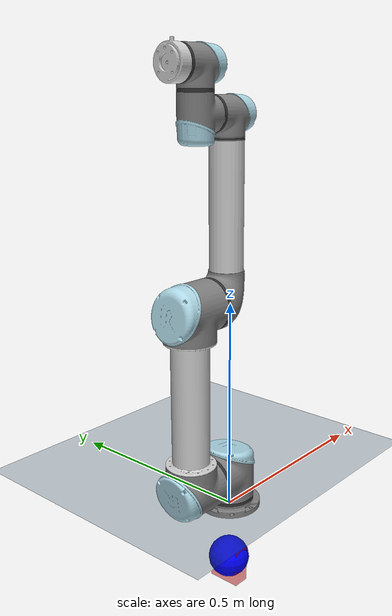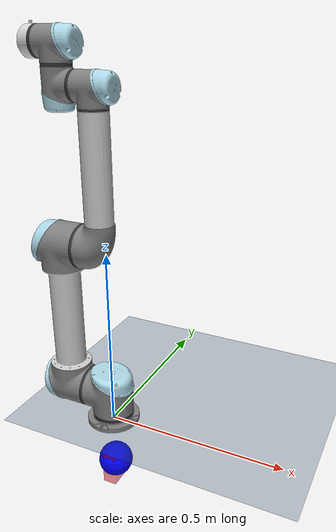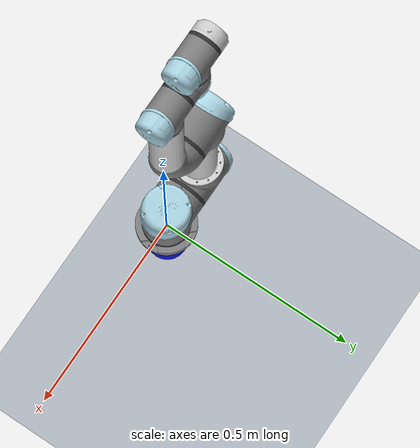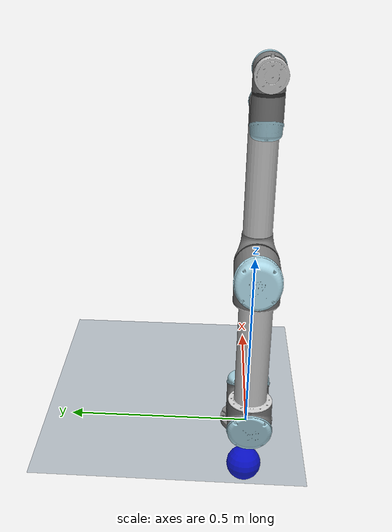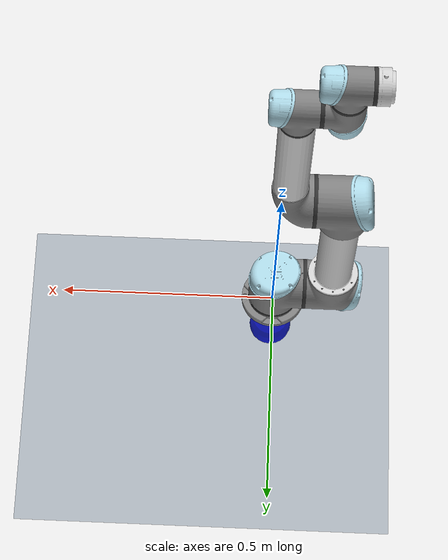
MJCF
<!-- NOTE: the joint limits and references have not been set. If using -->
<!-- this to control a real ur5, make sure they align with the values -->
<!-- used in the real arm firmware -->
<!-- Masses and center-of-masses taken from: www.universal-robots.com/
        how-tos-and-faqs/faq/ur-faq/
        parameters-for-calculations-of-kinematics-and-dynamics-45257/ -->
<!-- Principle moments of inertia not provided, set all to 0.1. -->
<!-- Inertia parameters provided at link below, not sure of accuracy so not used:
        http://hades.mech.northwestern.edu/images/4/49/UR5-URDF.pdf -->
<mujoco model="ur5">
    <compiler angle="radian" meshdir="meshes" balanceinertia="true"/>
  <option integrator="implicit" impratio="10" gravity = "0 0 -9.81" timestep="0.001" collision="dynamic"
  cone="pyramidal" noslip_iterations="3"/>
    <default>
        <light castshadow="false" diffuse="1 1 1" />
        <camera fovy="60" />
        <default class="2f85">
          <mesh scale="0.001 0.001 0.001"/>
          <general biastype="affine"/>
          <joint axis="1 0 0"/>
          <default class="driver">
            <joint range="0 0.8" armature="0.005" damping="0.1" solimplimit="0.95 0.99 0.001" solreflimit="0.005 1"/>
          </default>
          <default class="follower">
            <joint range="-0.872664 0.872664" pos="0 -0.018 0.0065" solimplimit="0.95 0.99 0.001" solreflimit="0.005 1"/>
          </default>
          <default class="spring_link">
            <joint range="-0.29670597283 0.8" stiffness="0.05" springref="2.62" damping="0.00125"/>
          </default>
          <default class="coupler">
            <joint range="-1.57 0" solimplimit="0.95 0.99 0.001" solreflimit="0.005 1"/>
          </default>

          <default class="visual1">
            <geom type="mesh" contype="0" conaffinity="0" group="2"/>
          </default>
          <default class="collision1">
            <geom type="mesh" group="3"/>
            <default class="pad_box1">
              <geom mass="0" type="box" pos="0 -0.0026 0.028125" size="0.011 0.004 0.009375" friction="0.7"
                solimp="0.95 0.99 0.001" solref="0.004 1" priority="1" rgba="0.55 0.55 0.55 1"/>
            </default>
            <default class="pad_box2">
              <geom mass="0" type="box" pos="0 -0.0026 0.009375" size="0.011 0.004 0.009375" friction="0.7"
                solimp="0.95 0.99 0.001" solref="0.004 1" priority="1" rgba="0.45 0.45 0.45 1"/>
            </default>
          </default>
        </default>
    </default>

    <custom>
        <numeric name="START_ANGLES" data="0 0 1.57 0 1.57 0"/>
        <numeric name="N_GRIPPER_JOINTS" data="2" />
        <text name="google_id" data="1SjWRUl-D1FZ5fB2cy4jF4X9wTsQ5LWzo"/>
    </custom>

    <asset>
        <!-- arm models -->
        <mesh file="link0.stl"/>
        <mesh file="link1.stl"/>
        <mesh file="link1_cap.stl" />
        <mesh file="link1_connector.stl" />
        <mesh file="link2.stl" />
        <mesh file="link2_tube.stl" />
        <mesh file="link2_cap.stl" />
        <mesh file="link2_connector.stl" />
        <mesh file="link3a.stl" />
        <mesh file="link3a_connector.stl" />
        <mesh file="link3_tube.stl" />
        <mesh file="link3_cap.stl" />
        <mesh file="link3b.stl" />
        <mesh file="link3b_connector.stl" />
        <mesh file="link3b_connector2.stl"/>
        <mesh file="link4.stl" />
        <mesh file="link4_cap.stl" />
        <mesh file="link4_connector.stl" />
        <mesh file="link5.stl" />
        <mesh file="link5_cap.stl" />
        <mesh file="link5_connector.stl" />
        <mesh file="link6.stl" />
        <mesh file="link6_connector.stl" />

        <mesh class="2f85" file="base_mount.stl"/>
        <mesh class="2f85" file="base.stl"/>
        <mesh class="2f85" file="driver.stl"/>
        <mesh class="2f85" file="coupler.stl"/>
        <mesh class="2f85" file="follower.stl"/>
        <mesh class="2f85" file="pad.stl"/>
        <mesh class="2f85" file="silicone_pad.stl"/>
        <mesh class="2f85" file="spring_link.stl"/>

        <texture type="skybox" builtin="gradient" rgb1="0.3 0.5 0.7" rgb2="0 0 0" width="512" height="3072"/>
        <texture type="2d" name="groundplane" builtin="checker" mark="edge" rgb1="0.2 0.3 0.4" rgb2="0.1 0.2 0.3"
      markrgb="0.8 0.8 0.8" width="300" height="300"/>
        <material name="groundplane" texture="groundplane" texuniform="true" texrepeat="5 5" reflectance="0.2"/>
        <material name="silver" specular="1" shininess="0.5" reflectance="1" emission="0.25" rgba="0.82 0.82 0.82 1"/>
        <material name="grey" specular="1" shininess="0.5" reflectance="1" emission="0.1" rgba="0.5 0.5 0.5 1"/>
        <material name="blue" specular="1" shininess="0.5" reflectance="1" emission="0" rgba="0.678 0.847 0.902 1"/>
        <material name="black" specular="1" shininess="0.5" reflectance="1" emission="0" rgba="0.2 0.2 0.2 1"/>
        <material name="metal" rgba="0.58 0.58 0.58 1"/>
        <material name="silicone" rgba="0.1882 0.1882 0.1882 1"/>
        <material name="gray" rgba="0.4627 0.4627 0.4627 1"/>
        <material name="black1" rgba="0.149 0.149 0.149 1"/>

    </asset>

    <worldbody>

        <body name="hand" pos="0 0 -0.15" mocap="true">
            <geom type="box" size=".002 .004 .006" rgba="0 .9 0 .5" contype="2" conaffinity="2"/>
        </body>

        <body name="target" pos="0 0 -0.15" mocap="true">
            <geom name="target" type="sphere" size="0.01" rgba=".9 0 0 .5" contype="4" conaffinity="4"/>
        </body>

        <body name="target_orientation" pos="0 0 -0.15" mocap="true">
            <geom type="box" size=".02 .04 .06" rgba=".9 0 0 .5" contype="8" conaffinity="8"/>
        </body>

        <body name="path_planner" pos="0 0 -0.15" mocap="true">
            <geom type="sphere" size="0.05" rgba="0 1 1 0.5" contype="16" conaffinity="16"/>
        </body>

        <body name="path_planner_orientation" pos="0 0 -0.15" mocap="true">
            <geom type="box" size=".02 .04 .06" rgba="0 1 1 .5" contype="16" conaffinity="16"/>
        </body>

        <body name="obstacle" pos="0 0 -0.15" mocap="true">
            <geom type="sphere" size="0.05" rgba="0 0 1 1"/>
        </body>

        <light directional="true" pos="0 0 15" dir="0 0 -1" />
        <geom name="floor" size="0 0 0.05" type="plane" material="groundplane"/>
        <body name="base_link" pos="0 0 0">
            <geom name="link0" type="mesh" mesh="link0" pos="0 0 0"/>

            <body name="link1" pos="0 0 0.0213">
                <joint name="joint0" axis="0 0 1" pos="0 0 0"/>
                <inertial pos="0 -0.02561 0.00193" mass="3.761" diaginertia="0.1 0.1 0.1"/>
                <geom name="link1_connector" type="mesh" mesh="link1_connector" pos="0 0 0" material="black"
                    conaffinity="32" contype="32"/>
                <geom name="link1" type="mesh" mesh="link1" pos="0 0 0.008" material="grey"/>
                <geom name="link1_cap" type="mesh" mesh="link1_cap" pos="0 0 .1025" material="blue"/>

                <body name="link2" pos="-0.0663 0 0.0679">
                    <joint name="joint1" axis="-1 0 0" pos="0 0 0"/>
                    <inertial pos="-0.04706 0 0.2125" mass="8.058" diaginertia="0.1 0.1 0.1"/>
                    <geom name="link2_connector" type="mesh" mesh="link2_connector" pos="0 0 0" material="black"
                        conaffinity="32" contype="32"/>
                    <geom name="link2" type="mesh" mesh="link2" pos="-0.008 0 0" material="grey"/>
                    <geom name="link2_cap" type="mesh" mesh="link2_cap" pos="-0.1015 0 -0.0025" material="blue"/>
                    <geom name="link2_tube" type="mesh" mesh="link2_tube" pos="-0.0679 0 0.066" material="silver"/>

                    <body name="link3" pos="-0.008 0 0.425">
                        <joint name="joint2" axis="1 0 0" pos="0 0 0"/>
                        <inertial pos="0.0478 0 0.15" mass="2.846" diaginertia="0.1 0.1 0.1"/>
                        <geom name="link3a_connector" type="mesh" mesh="link3a_connector" pos="0 0 0" material="black"
                            conaffinity="32" contype="32"/>
                        <geom name="link3a" type="mesh" mesh="link3a" pos="0.008 0 0" material="grey"/>
                        <geom name="link3_tube" type="mesh" mesh="link3_tube" pos="0.059 0 0.066" material="silver"/>
                        <geom name="link3b_connector" type="mesh" mesh="link3b_connector" pos="0.059 0 0.3418" material="black" />
                        <geom name="link3b_connector2" type="mesh" mesh="link3b_connector2" pos="0.059 0 0.34" material="grey"
                            conaffinity="32" contype="32"/>
                        <geom name="link3b" type="mesh" mesh="link3b" pos="0.059 0 0.347" material="grey"/>
                        <geom name="link3_cap" type="mesh" mesh="link3_cap" pos="0.0837 0 0.392" material="blue"/>

                        <body name="link4" pos="0.0173 0 0.3922">
                            <joint name="joint3" axis="-1 0 0" pos="0 0 0"/>
                            <inertial pos="-0.05796 -0.0018 0" mass="1.37" diaginertia="0.1 0.1 0.1"/>
                            <geom name="link4_connector" type="mesh" mesh="link4_connector" pos="0 0 0" material="black"
                                conaffinity="32" contype="32"/>
                            <geom name="link4" type="mesh" mesh="link4" pos="-0.008 0 0" material="grey"/>
                            <geom name="link4_cap" type="mesh" mesh="link4_cap" pos="-0.05325 0 -0.0247" material="blue"/>

                            <body name="link5" pos="-0.05325 0 0.04165">
                                <joint name="joint4" axis="0 0 1" pos="0 0 0"/>
                                <inertial pos="0.0018 0 0.01634" mass="1.3" diaginertia="0.1 0.1 0.1"/>
                                <geom name="link5_connector" type="mesh" mesh="link5_connector" pos="0 0 0" material="black"
                                    conaffinity="32" contype="32"/>
                                <geom name="link5" type="mesh" mesh="link5" pos="0 0 0.0079" material="grey"/>
                                <geom name="link5_cap" type="mesh" mesh="link5_cap" pos="0.025 0 0.053" material="blue"/>

                                <body name="link6" pos="-0.04165 0 0.05305">
                                    <joint name="joint5" axis="-1 0 0" pos="0 0 0"/>
                                    <inertial pos="-0.038841 0 0" mass="0.365" diaginertia="0.1 0.1 0.1"/>
                                    <geom name="link6_connector" type="mesh" mesh="link6_connector" pos="0 0 0" material="black"
                                        conaffinity="32" contype="32"/>
                                    <geom name="link6" type="mesh" mesh="link6" pos="-0.008 0 0" material="silver"/>
                                    <body name="EE" pos="-0.04 0 0" quat="-1 1 0 0">

<!--                                            &lt;!&ndash; Right-hand side 4-bar linkage &ndash;&gt;-->
<!--                                            &lt;!&ndash; Left-hand side 4-bar linkage &ndash;&gt;-->

                                    </body>>
                                </body>
                            </body>
                        </body>
                    </body>
                </body>
            </body>
        </body>
<!--            solrefsmooth="0.004 1" solimpsmooth="0.7 0.8 0.1 0.5 6">-->
<!--                      friction="0.01 0.01 0.01" solref="0.004 1" solimp="0.95 0.99 0.001"-->

    </worldbody>

    <actuator>
        <motor name="joint0_motor" joint="joint0" ctrllimited="true" ctrlrange="-3.1415 3.1415"/>
        <motor name="joint1_motor" joint="joint1" ctrllimited="true" ctrlrange="-3.1415 3.1415"/>
        <motor name="joint2_motor" joint="joint2" ctrllimited="true" ctrlrange="-3.1415 3.1415"/>
        <motor name="joint3_motor" joint="joint3" ctrllimited="true" ctrlrange="-3.1415 3.1415"/>
        <motor name="joint4_motor" joint="joint4" ctrllimited="true" ctrlrange="-3.1415 3.1415"/>
        <motor name="joint5_motor" joint="joint5" ctrllimited="true" ctrlrange="-3.1415 3.1415"/>
    </actuator>

</mujoco>
